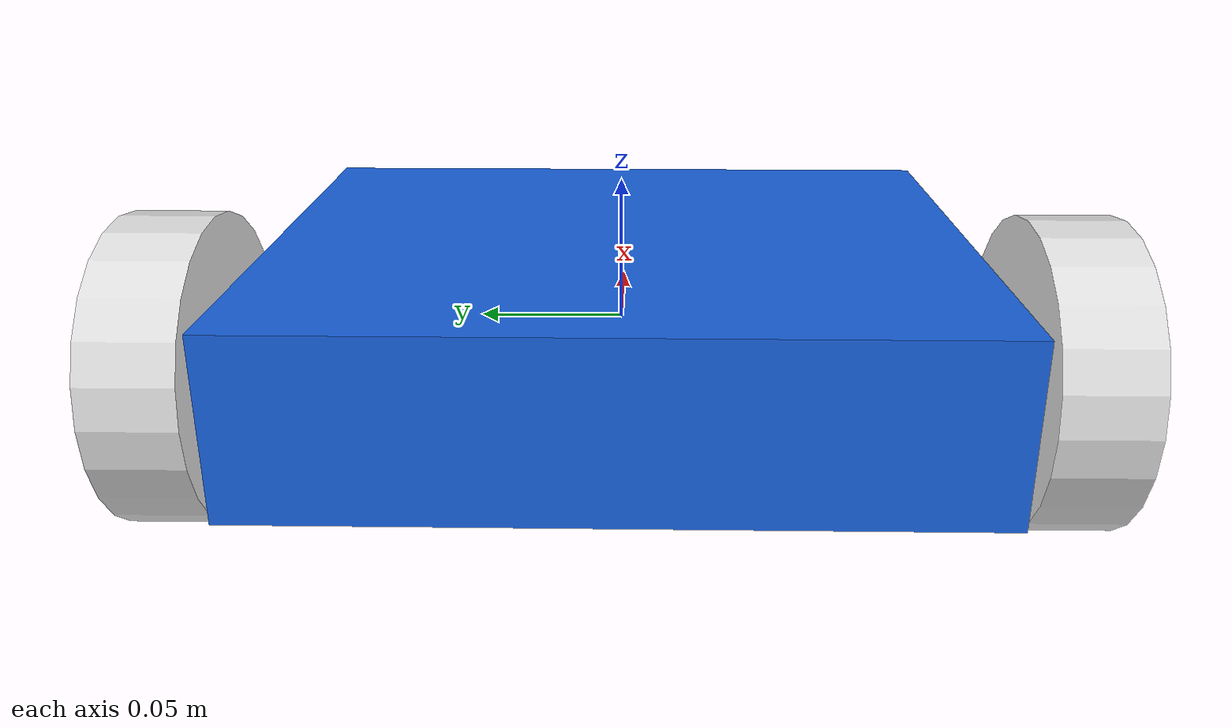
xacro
<?xml version="1.0" ?>
<robot xmlns:xacro="http://www.ros.org/wiki/xacro" name="demo_bot">

    <xacro:include filename="colors.xacro" />
    <xacro:include filename="inertial_macros.xacro"/>
    <xacro:include filename="demo_bot.xacro" />
    <xacro:include filename="gazebo_control.xacro" />

</robot>

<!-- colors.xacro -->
<robot xmlns:xacro="http://www.ros.org/wiki/xacro" name="demo_bot">

  <material name="blue">
    <color rgba="0.1 0.4 0.9 1"/>
  </material>
  <material name="red">
    <color rgba="0.9 0.3 0.1 1"/>
  </material>
  <material name="white">
    <color rgba="0.9 0.9 0.9 1"/>
  </material>

</robot>

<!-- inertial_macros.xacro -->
<robot xmlns:xacro="http://www.ros.org/wiki/xacro" >

    <!-- Specify some standard inertial calculations https://en.wikipedia.org/wiki/List_of_moments_of_inertia -->
    <!-- These make use of xacro's mathematical functionality -->

    <xacro:macro name="inertial_sphere" params="mass radius *origin">
        <inertial>
            <xacro:insert_block name="origin"/>
            <mass value="${mass}" />
            <inertia ixx="${(2/5) * mass * (radius*radius)}" ixy="0.0" ixz="0.0"
                    iyy="${(2/5) * mass * (radius*radius)}" iyz="0.0"
                    izz="${(2/5) * mass * (radius*radius)}" />
        </inertial>
    </xacro:macro>

    <xacro:macro name="inertial_box" params="mass x y z *origin">
        <inertial>
            <xacro:insert_block name="origin"/>
            <mass value="${mass}" />
            <inertia ixx="${(1/12) * mass * (y*y+z*z)}" ixy="0.0" ixz="0.0"
                    iyy="${(1/12) * mass * (x*x+z*z)}" iyz="0.0"
                    izz="${(1/12) * mass * (x*x+y*y)}" />
        </inertial>
    </xacro:macro>

    <xacro:macro name="inertial_cylinder" params="mass length radius *origin">
        <inertial>
            <xacro:insert_block name="origin"/>
            <mass value="${mass}" />
            <inertia ixx="${(1/12) * mass * (3*radius*radius + length*length)}" ixy="0.0" ixz="0.0"
                    iyy="${(1/12) * mass * (3*radius*radius + length*length)}" iyz="0.0"
                    izz="${(1/2) * mass * (radius*radius)}" />
        </inertial>
    </xacro:macro>

</robot>

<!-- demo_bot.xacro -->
<robot xmlns:xacro="http://www.ros.org/wiki/xacro" name="demo_bot">
    <xacro:include filename="wheels.xacro" />

    <!-- Base Link -->
    <link name="base_link">
        <visual>
        <origin xyz="0 0 0" rpy="0 0 0"/>
        <geometry>
            <!-- All dimensions in meters -->
            <box size="0.2 0.24 0.06" />
        </geometry>
        <material name="blue"/>
        </visual>
        <collision>
        <origin xyz="0 0 0" rpy="0 0 0"/>
        <geometry>
            <!-- All dimensions in meters -->
            <box size="0.2 0.24 0.06" />
        </geometry>
        </collision>

        <xacro:inertial_box mass="3" x="0.2" y="0.24" z="0.06">
            <origin xyz="0 0 0" rpy="0 0 0"/>
        </xacro:inertial_box>
    </link>

    <!-- Left Wheel -->
    <xacro:wheel prefix="left" y="0.14" rpy="${pi/2} 0 0" axis="-1"/>
    <!-- Right Wheel -->
    <xacro:wheel prefix="right" y="-0.14" rpy="-${pi/2} 0 0" axis="1"/>

    <!-- Fixed Caster -->
    <joint name="caster_joint" type="fixed">
        <origin xyz="0.06 0 -0.03"/>
        <parent link="base_link"/>
        <child link="caster"/>
    </joint>

    <link name="caster">
        <visual>
        <origin xyz="0 0 0" rpy="0 0 0"/>
        <geometry>
            <!-- All dimensions in meters -->
            <sphere radius="0.02" />
        </geometry>
        <material name="blue"/>
        </visual>
        <collision>
        <origin xyz="0 0 0" rpy="0 0 0"/>
        <geometry>
            <sphere radius="0.02" />
        </geometry>
        </collision>
    </link>

    <gazebo reference="caster">
        <mu1 value="0"/>
        <mu2 value="0"/>
    </gazebo>
</robot>

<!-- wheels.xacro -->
<robot xmlns:xacro="http://www.ros.org/wiki/xacro" name="demo_bot">

<!-- Create a Macro for a Wheel -->
<xacro:macro name="wheel" params="prefix y rpy axis">

    <!-- Wheel Joint -->
    <joint name="${prefix}_wheel_joint" type="continuous">
        <parent link="base_link"/>
        <child link="${prefix}_wheel"/>
        <origin xyz="-0.05 ${y} 0" rpy="${rpy}"/>
        <axis xyz="0 0 ${axis}"/>
        <limit effort="0.5" velocity="10.0"/>
    </joint>

    <!-- Wheel Link -->
    <link name="${prefix}_wheel">
        <origin rpy="0 0 0" xyz="0 0 0"/>
        <visual>
            <geometry>
                <cylinder length="0.03" radius="0.05" />
            </geometry>
            <material name="white"/>
        </visual>
        <collision>
            <geometry>
                <sphere radius="0.05"/>
            </geometry>
        </collision>
        <xacro:inertial_cylinder mass="0.1" length="0.03" radius="0.05">
            <origin xyz="0 0 0" rpy="0 0 0"/>
        </xacro:inertial_cylinder>
    </link>

    <gazebo reference="${prefix}_wheel">
        <mu1 value="0.7"/>
        <mu2 value="0.5"/>
    </gazebo>

</xacro:macro>

</robot>
